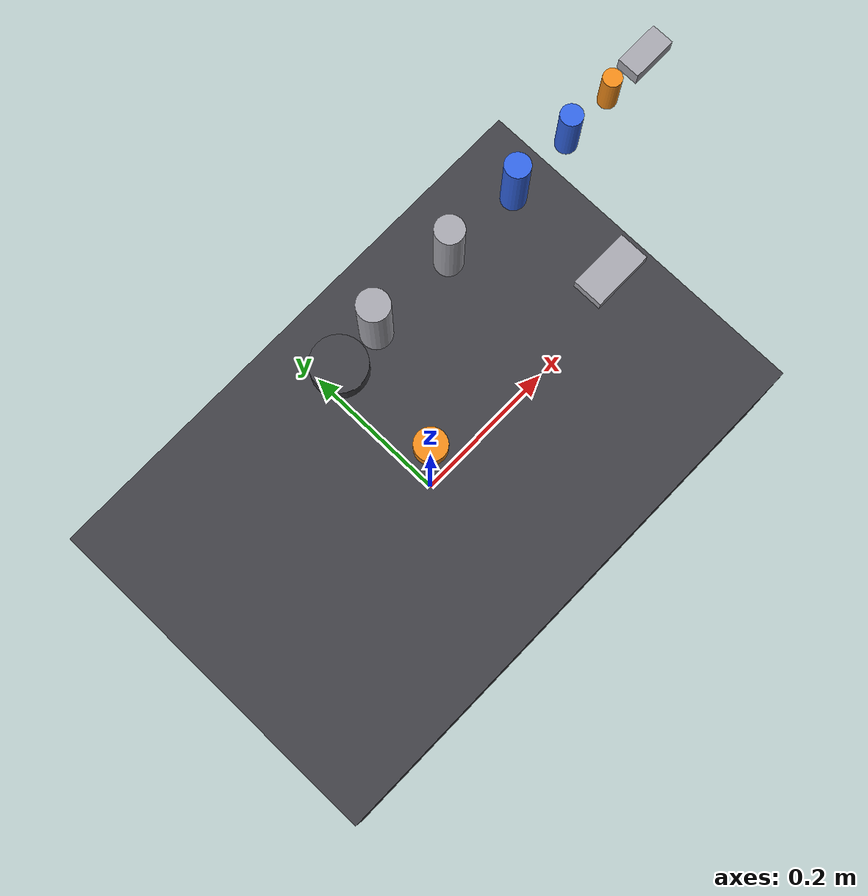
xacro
<?xml version="1.0"?>
<robot name="six_wheel_rover" xmlns:xacro="http://www.ros.org/wiki/xacro">

  <!-- ============================ Properties ============================ -->
  <xacro:property name="pi" value="3.1415926535897931"/>

  <!-- Chassis dims (meters) -->
  <xacro:property name="body_length" value="0.70"/>
  <xacro:property name="body_width"  value="0.45"/>
  <xacro:property name="body_height" value="0.20"/>

  <!-- Wheel geometry -->
  <xacro:property name="wheel_radius" value="0.07"/>
  <xacro:property name="wheel_width"  value="0.04"/>

  <!-- Rover kinematics -->
  <xacro:property name="wheelbase"   value="0.50"/>  <!-- front axle to rear axle -->
  <xacro:property name="track_width" value="0.40"/>  <!-- left to right (corner wheels) -->
  <xacro:property name="mid_track"   value="0.36"/>  <!-- mid wheels slightly inboard -->
  <xacro:property name="mid_x"       value="0.0"/>   <!-- middle axle x -->

  <!-- Mass properties -->
  <xacro:property name="body_mass" value="18.0"/>
  <xacro:property name="wheel_mass" value="1.0"/>
  <xacro:property name="steer_mass" value="0.2"/>

  <!-- Arm link lengths -->
  <xacro:property name="arm_l1" value="0.12"/>
  <xacro:property name="arm_l2" value="0.12"/>
  <xacro:property name="arm_l3" value="0.10"/>
  <xacro:property name="arm_l4" value="0.08"/>
  <xacro:property name="arm_l5" value="0.06"/>

  <!-- ============================ Materials ============================ -->
  <material name="black"><color rgba="0.05 0.05 0.05 1"/></material>
  <material name="dark_grey"><color rgba="0.25 0.25 0.27 1"/></material>
  <material name="light_grey"><color rgba="0.65 0.65 0.68 1"/></material>
  <material name="blue"><color rgba="0.2 0.4 0.9 1"/></material>
  <material name="orange"><color rgba="0.95 0.55 0.1 1"/></material>

  <!-- =========================== Inertial macros =========================== -->
  <xacro:macro name="box_inertial" params="m x y z">
    <inertial>
      <mass value="${m}"/>
      <origin xyz="0 0 0" rpy="0 0 0"/>
      <inertia ixx="${m*(y*y+z*z)/12.0}" ixy="0" ixz="0"
               iyy="${m*(x*x+z*z)/12.0}" iyz="0"
               izz="${m*(x*x+y*y)/12.0}"/>
    </inertial>
  </xacro:macro>

  <xacro:macro name="cyl_inertial" params="m r h axis">
    <!-- axis in x/y/z -->
    <inertial>
      <mass value="${m}"/>
      <origin xyz="0 0 0" rpy="0 0 0"/>
      <xacro:if value="${axis == 'y'}">
        <inertia
          ixx="${m*(3*r*r+h*h)/12.0}" ixy="0" ixz="0"
          iyy="${0.5*m*r*r}"          iyz="0"
          izz="${m*(3*r*r+h*h)/12.0}"/>
      </xacro:if>
      <xacro:if value="${axis != 'y'}">
        <inertia
          ixx="${0.5*m*r*r}" ixy="0" ixz="0"
          iyy="${m*(3*r*r+h*h)/12.0}" iyz="0"
          izz="${m*(3*r*r+h*h)/12.0}"/>
      </xacro:if>
    </inertial>
  </xacro:macro>

  <!-- ============================ Base (chassis) ============================ -->
  <link name="base_link">
    <visual>
      <origin xyz="0 0 ${body_height/2}" rpy="0 0 0"/>
      <geometry>
        <box size="${body_length} ${body_width} ${body_height}"/>
      </geometry>
      <material name="dark_grey"/>
    </visual>
    <collision>
      <origin xyz="0 0 ${body_height/2}" rpy="0 0 0"/>
      <geometry>
        <box size="${body_length} ${body_width} ${body_height}"/>
      </geometry>
    </collision>
    <xacro:box_inertial m="${body_mass}" x="${body_length}" y="${body_width}" z="${body_height}"/>
  </link>

  <!-- footprint and base_stabilized are useful frames -->
  <link name="base_footprint"/>
  <joint name="base_footprint_joint" type="fixed">
    <parent link="base_footprint"/>
    <child link="base_link"/>
    <origin xyz="0 0 0" rpy="0 0 0"/>
  </joint>

  <link name="base_stabilized"/>
  <joint name="base_stabilized_joint" type="fixed">
    <parent link="base_link"/>
    <child  link="base_stabilized"/>
    <origin xyz="0 0 0" rpy="0 0 0"/>
  </joint>

  <!-- ============================ Wheel macros ============================ -->

  <!-- Steerable corner wheel: steer joint about Z, wheel joint about Y -->
  <xacro:macro name="steerable_wheel" params="name x y">
    <link name="${name}_steer_link">
      <visual>
        <origin xyz="0 0 0" rpy="0 0 0"/>
        <geometry><cylinder radius="0.02" length="0.03"/></geometry>
        <material name="light_grey"/>
      </visual>
      <collision>
        <origin xyz="0 0 0" rpy="0 0 0"/>
        <geometry><cylinder radius="0.02" length="0.03"/></geometry>
      </collision>
      <xacro:cyl_inertial m="${steer_mass}" r="0.02" h="0.03" axis="z"/>
    </link>

    <joint name="${name}_steer_joint" type="revolute">
      <parent link="base_link"/>
      <child  link="${name}_steer_link"/>
      <origin xyz="${x} ${y} ${wheel_radius}" rpy="0 0 0"/>
      <axis xyz="0 0 1"/>
      <limit lower="${-45*pi/180}" upper="${45*pi/180}" effort="40" velocity="1.5"/>
      <dynamics damping="2.0" friction="1.0"/>
    </joint>

    <link name="${name}_wheel_link">
      <visual>
        <origin xyz="0 0 0" rpy="${pi/2} 0 0"/>
        <geometry><cylinder radius="${wheel_radius}" length="${wheel_width}"/></geometry>
        <material name="black"/>
      </visual>
      <collision>
        <origin xyz="0 0 0" rpy="${pi/2} 0 0"/>
        <geometry><cylinder radius="${wheel_radius}" length="${wheel_width}"/></geometry>
      </collision>
      <xacro:cyl_inertial m="${wheel_mass}" r="${wheel_radius}" h="${wheel_width}" axis="y"/>
    </link>

    <joint name="${name}_wheel_joint" type="continuous">
      <parent link="${name}_steer_link"/>
      <child  link="${name}_wheel_link"/>
      <origin xyz="0 0 0" rpy="0 0 0"/>
      <axis xyz="0 1 0"/>
      <dynamics damping="0.1" friction="0.2"/>
    </joint>

    <!-- ros_control transmissions -->
    <transmission name="${name}_wheel_trans">
      <type>transmission_interface/SimpleTransmission</type>
      <joint name="${name}_wheel_joint">
        <hardwareInterface>hardware_interface/VelocityJointInterface</hardwareInterface>
      </joint>
      <actuator name="${name}_wheel_motor">
        <hardwareInterface>hardware_interface/VelocityJointInterface</hardwareInterface>
        <mechanicalReduction>1</mechanicalReduction>
      </actuator>
    </transmission>

    <transmission name="${name}_steer_trans">
      <type>transmission_interface/SimpleTransmission</type>
      <joint name="${name}_steer_joint">
        <hardwareInterface>hardware_interface/PositionJointInterface</hardwareInterface>
      </joint>
      <actuator name="${name}_steer_servo">
        <hardwareInterface>hardware_interface/PositionJointInterface</hardwareInterface>
        <mechanicalReduction>1</mechanicalReduction>
      </actuator>
    </transmission>
  </xacro:macro>

  <!-- Fixed mid wheel (no steering) -->
  <xacro:macro name="fixed_wheel" params="name x y">
    <link name="${name}_wheel_link">
      <visual>
        <origin xyz="0 0 0" rpy="${pi/2} 0 0"/>
        <geometry><cylinder radius="${wheel_radius}" length="${wheel_width}"/></geometry>
        <material name="black"/>
      </visual>
      <collision>
        <origin xyz="0 0 0" rpy="${pi/2} 0 0"/>
        <geometry><cylinder radius="${wheel_radius}" length="${wheel_width}"/></geometry>
      </collision>
      <xacro:cyl_inertial m="${wheel_mass}" r="${wheel_radius}" h="${wheel_width}" axis="y"/>
    </link>

    <joint name="${name}_wheel_joint" type="continuous">
      <parent link="base_link"/>
      <child  link="${name}_wheel_link"/>
      <origin xyz="${x} ${y} ${wheel_radius}" rpy="0 0 0"/>
      <axis xyz="0 1 0"/>
      <dynamics damping="0.1" friction="0.2"/>
    </joint>

    <transmission name="${name}_wheel_trans">
      <type>transmission_interface/SimpleTransmission</type>
      <joint name="${name}_wheel_joint">
        <hardwareInterface>hardware_interface/VelocityJointInterface</hardwareInterface>
      </joint>
      <actuator name="${name}_wheel_motor">
        <hardwareInterface>hardware_interface/VelocityJointInterface</hardwareInterface>
        <mechanicalReduction>1</mechanicalReduction>
      </actuator>
    </transmission>
  </xacro:macro>

  <!-- ============================ Wheels placement ============================ -->
  <!-- 4 steerable corners -->
  <xacro:steerable_wheel name="wheel_fl" x="${ wheelbase/2}" y="${ track_width/2}"/>
  <xacro:steerable_wheel name="wheel_fr" x="${ wheelbase/2}" y="${-track_width/2}"/>
  <xacro:steerable_wheel name="wheel_rl" x="${-wheelbase/2}" y="${ track_width/2}"/>
  <xacro:steerable_wheel name="wheel_rr" x="${-wheelbase/2}" y="${-track_width/2}"/>

  <!-- 2 fixed mid wheels -->
  <xacro:fixed_wheel name="wheel_ml" x="${mid_x}" y="${ mid_track/2}"/>
  <xacro:fixed_wheel name="wheel_mr" x="${mid_x}" y="${-mid_track/2}"/>

  <!-- ============================ Sensors ============================ -->
  <link name="imu_link">
    <visual>
      <origin xyz="0 0 0" rpy="0 0 0"/>
      <geometry><box size="0.03 0.03 0.01"/></geometry>
      <material name="blue"/>
    </visual>
    <xacro:box_inertial m="0.05" x="0.03" y="0.03" z="0.01"/>
  </link>
  <joint name="imu_joint" type="fixed">
    <parent link="base_link"/>
    <child  link="imu_link"/>
    <origin xyz="0 0 ${body_height*0.75}" rpy="0 0 0"/>
  </joint>

  <link name="gps_link">
    <visual>
      <geometry><cylinder radius="0.02" length="0.02"/></geometry>
      <material name="orange"/>
    </visual>
    <xacro:cyl_inertial m="0.05" r="0.02" h="0.02" axis="z"/>
  </link>
  <joint name="gps_joint" type="fixed">
    <parent link="base_link"/>
    <child  link="gps_link"/>
    <origin xyz="0 0 ${body_height + 0.05}" rpy="0 0 0"/>
  </joint>

  <link name="camera_link">
    <visual>
      <geometry><box size="0.08 0.04 0.03"/></geometry>
      <material name="light_grey"/>
    </visual>
    <xacro:box_inertial m="0.25" x="0.08" y="0.04" z="0.03"/>
  </link>
  <joint name="camera_joint" type="fixed">
    <parent link="base_link"/>
    <child  link="camera_link"/>
    <origin xyz="${body_length/2 - 0.05} 0 ${body_height}" rpy="0 0 0"/>
  </joint>

  <!-- optical frame for RGB camera -->
  <link name="camera_optical_frame"/>
  <joint name="camera_optical_joint" type="fixed">
    <parent link="camera_link"/>
    <child link="camera_optical_frame"/>
    <origin xyz="0 0 0" rpy="${-pi/2} 0 ${-pi/2}"/>
  </joint>

  <!-- ============================ Arm ============================ -->
  <link name="arm_base_link">
    <visual>
      <geometry><cylinder radius="0.035" length="0.05"/></geometry>
      <material name="dark_grey"/>
    </visual>
    <xacro:cyl_inertial m="0.5" r="0.035" h="0.05" axis="z"/>
  </link>
  <joint name="arm_base_joint" type="fixed">
    <parent link="base_link"/>
    <child  link="arm_base_link"/>
    <origin xyz="0.0 ${body_width/2 - 0.08} ${body_height}" rpy="0 0 0"/>
  </joint>

  <xacro:macro name="arm_link" params="name length radius mass color">
    <link name="${name}">
      <visual>
        <origin xyz="${length/2} 0 0" rpy="0 0 0"/>
        <geometry><cylinder radius="${radius}" length="${length}"/></geometry>
        <material name="${color}"/>
      </visual>
      <collision>
        <origin xyz="${length/2} 0 0" rpy="0 0 0"/>
        <geometry><cylinder radius="${radius}" length="${length}"/></geometry>
      </collision>
      <xacro:cyl_inertial m="${mass}" r="${radius}" h="${length}" axis="x"/>
    </link>
  </xacro:macro>

  <xacro:arm_link name="link_1" length="${arm_l1}" radius="0.02" mass="0.6" color="light_grey"/>
  <joint name="joint_1" type="revolute">
    <parent link="arm_base_link"/>
    <child link="link_1"/>
    <origin xyz="0 0 0.05" rpy="0 0 0"/>
    <axis xyz="0 0 1"/>
    <limit lower="${-pi}" upper="${pi}" effort="15" velocity="1.2"/>
  </joint>

  <xacro:arm_link name="link_2" length="${arm_l2}" radius="0.018" mass="0.5" color="light_grey"/>
  <joint name="joint_2" type="revolute">
    <parent link="link_1"/>
    <child link="link_2"/>
    <origin xyz="${arm_l1} 0 0" rpy="0 0 0"/>
    <axis xyz="0 1 0"/>
    <limit lower="${-pi/2}" upper="${pi/2}" effort="12" velocity="1.2"/>
  </joint>

  <xacro:arm_link name="link_3" length="${arm_l3}" radius="0.016" mass="0.4" color="blue"/>
  <joint name="joint_3" type="revolute">
    <parent link="link_2"/>
    <child link="link_3"/>
    <origin xyz="${arm_l2} 0 0" rpy="0 0 0"/>
    <axis xyz="0 1 0"/>
    <limit lower="${-pi/2}" upper="${pi/2}" effort="10" velocity="1.2"/>
  </joint>

  <xacro:arm_link name="link_4" length="${arm_l4}" radius="0.014" mass="0.25" color="blue"/>
  <joint name="joint_4" type="revolute">
    <parent link="link_3"/>
    <child link="link_4"/>
    <origin xyz="${arm_l3} 0 0" rpy="0 0 0"/>
    <axis xyz="1 0 0"/>
    <limit lower="${-pi/2}" upper="${pi/2}" effort="8" velocity="1.5"/>
  </joint>

  <xacro:arm_link name="link_5" length="${arm_l5}" radius="0.012" mass="0.2" color="orange"/>
  <joint name="joint_5" type="revolute">
    <parent link="link_4"/>
    <child link="link_5"/>
    <origin xyz="${arm_l4} 0 0" rpy="0 0 0"/>
    <axis xyz="1 0 0"/>
    <limit lower="${-pi/2}" upper="${pi/2}" effort="6" velocity="1.8"/>
  </joint>

  <link name="arm_tool_link">
    <visual>
      <origin xyz="0.03 0 0" rpy="0 0 0"/>
      <geometry><box size="0.06 0.03 0.02"/></geometry>
      <material name="light_grey"/>
    </visual>
    <xacro:box_inertial m="0.15" x="0.06" y="0.03" z="0.02"/>
  </link>
  <joint name="tool_joint" type="fixed">
    <parent link="link_5"/>
    <child link="arm_tool_link"/>
    <origin xyz="${arm_l5} 0 0" rpy="0 0 0"/>
  </joint>

  <!-- Arm transmissions -->
  <xacro:macro name="arm_trans" params="joint">
    <transmission name="${joint}_trans">
      <type>transmission_interface/SimpleTransmission</type>
      <joint name="${joint}">
        <hardwareInterface>hardware_interface/PositionJointInterface</hardwareInterface>
      </joint>
      <actuator name="${joint}_motor">
        <hardwareInterface>hardware_interface/PositionJointInterface</hardwareInterface>
        <mechanicalReduction>1</mechanicalReduction>
      </actuator>
    </transmission>
  </xacro:macro>
  <xacro:arm_trans joint="joint_1"/>
  <xacro:arm_trans joint="joint_2"/>
  <xacro:arm_trans joint="joint_3"/>
  <xacro:arm_trans joint="joint_4"/>
  <xacro:arm_trans joint="joint_5"/>

  <!-- ============================ Gazebo tags ============================ -->
  <gazebo reference="base_link">
    <material>Gazebo/DarkGrey</material>
  </gazebo>
  <gazebo reference="camera_link">
    <material>Gazebo/White</material>
    <sensor name="kinect_depth" type="depth">
      <always_on>true</always_on>
      <update_rate>30</update_rate>
      <camera>
        <horizontal_fov>1.047</horizontal_fov>
        <image><width>640</width><height>480</height><format>R8G8B8</format></image>
        <clip><near>0.1</near><far>5.0</far></clip>
      </camera>
      <plugin name="gazebo_ros_depth_camera" filename="libgazebo_ros_openni_kinect.so">
        <cameraName>camera</cameraName>
        <frameName>camera_link</frameName>
        <imageTopicName>rgb/image_raw</imageTopicName>
        <depthImageTopicName>depth/image_raw</depthImageTopicName>
        <pointCloudTopicName>depth/points</pointCloudTopicName>
      </plugin>
    </sensor>
  </gazebo>

  <gazebo reference="imu_link">
    <sensor name="imu_sensor" type="imu">
      <always_on>true</always_on>
      <update_rate>100</update_rate>
      <plugin name="gazebo_ros_imu" filename="libgazebo_ros_imu.so">
        <topicName>imu/data</topicName>
        <bodyName>imu_link</bodyName>
        <frameName>imu_link</frameName>
      </plugin>
    </sensor>
  </gazebo>

</robot>
